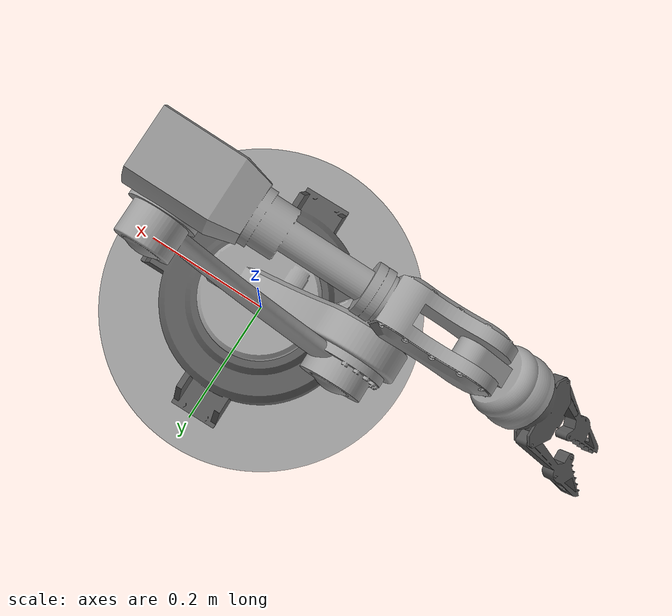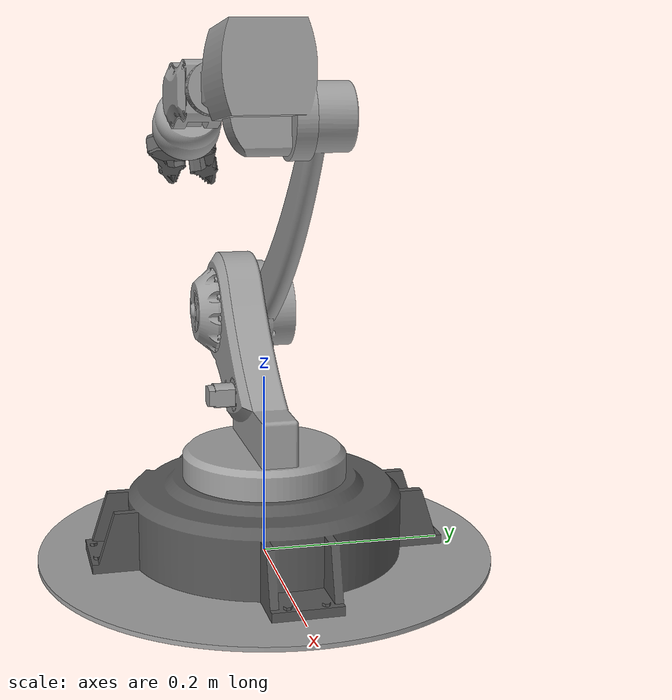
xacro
<?xml version="1.0" ?>
<robot name="industrial_manipulator" xmlns:xacro="http://www.ros.org/wiki/xacro">

<xacro:include filename="$(find industrial_manipulator_description)/urdf/materials.xacro" />
<xacro:include filename="$(find industrial_manipulator_description)/urdf/industrial_manipulator.trans" />
<xacro:include filename="$(find industrial_manipulator_description)/urdf/industrial_manipulator.gazebo" />
<link name="base_link">
  <inertial>
    <origin xyz="3.7056147840780973e-17 0.0 0.0025" rpy="0 0 0"/>
    <mass value="7.706719478337462"/>
    <inertia ixx="0.120434" iyy="0.120434" izz="0.240835" ixy="0.0" iyz="0.0" ixz="0.0"/>
  </inertial>
  <visual>
    <origin xyz="0 0 0" rpy="0 0 0"/>
    <geometry>
      <mesh filename="package://industrial_manipulator_description/meshes/base_link.stl" scale="0.001 0.001 0.001"/>
    </geometry>
    <material name="steel_satin"/>
  </visual>
  <collision>
    <origin xyz="0 0 0" rpy="0 0 0"/>
    <geometry>
      <mesh filename="package://industrial_manipulator_description/meshes/base_link.stl" scale="0.001 0.001 0.001"/>
    </geometry>
  </collision>
</link>

<link name="link_1_1">
  <inertial>
    <origin xyz="-0.059179768169652223 -0.004771022287952845 0.05995343825363532" rpy="0 0 0"/>
    <mass value="18.75876915858104"/>
    <inertia ixx="0.097802" iyy="0.193886" izz="0.132372" ixy="-0.006316" iyz="0.00549" ixz="0.07432"/>
  </inertial>
  <visual>
    <origin xyz="-0.0 0.0 -0.109" rpy="0 0 0"/>
    <geometry>
      <mesh filename="package://industrial_manipulator_description/meshes/link_1_1.stl" scale="0.001 0.001 0.001"/>
    </geometry>
    <material name="steel_satin"/>
  </visual>
  <collision>
    <origin xyz="-0.0 0.0 -0.109" rpy="0 0 0"/>
    <geometry>
      <mesh filename="package://industrial_manipulator_description/meshes/link_1_1.stl" scale="0.001 0.001 0.001"/>
    </geometry>
  </collision>
</link>

<link name="link_2_1">
  <inertial>
    <origin xyz="0.1046974308612598 0.037234352020241834 0.09187875343172738" rpy="0 0 0"/>
    <mass value="6.328393377937569"/>
    <inertia ixx="0.064903" iyy="0.135193" izz="0.072298" ixy="-0.000601" iyz="-0.000827" ixz="-0.064485"/>
  </inertial>
  <visual>
    <origin xyz="0.149985 0.002086 -0.244154" rpy="0 0 0"/>
    <geometry>
      <mesh filename="package://industrial_manipulator_description/meshes/link_2_1.stl" scale="0.001 0.001 0.001"/>
    </geometry>
    <material name="steel_satin"/>
  </visual>
  <collision>
    <origin xyz="0.149985 0.002086 -0.244154" rpy="0 0 0"/>
    <geometry>
      <mesh filename="package://industrial_manipulator_description/meshes/link_2_1.stl" scale="0.001 0.001 0.001"/>
    </geometry>
  </collision>
</link>

<link name="link_3_1">
  <inertial>
    <origin xyz="-0.04808155967490895 -0.027034211292782478 0.0338349060979814" rpy="0 0 0"/>
    <mass value="11.40386431538772"/>
    <inertia ixx="0.015254" iyy="0.067298" izz="0.064227" ixy="-0.001658" iyz="0.000841" ixz="-0.002875"/>
  </inertial>
  <visual>
    <origin xyz="-0.102049 -0.001419 -0.486983" rpy="0 0 0"/>
    <geometry>
      <mesh filename="package://industrial_manipulator_description/meshes/link_3_1.stl" scale="0.001 0.001 0.001"/>
    </geometry>
    <material name="steel_satin"/>
  </visual>
  <collision>
    <origin xyz="-0.102049 -0.001419 -0.486983" rpy="0 0 0"/>
    <geometry>
      <mesh filename="package://industrial_manipulator_description/meshes/link_3_1.stl" scale="0.001 0.001 0.001"/>
    </geometry>
  </collision>
</link>

<link name="link_5_1">
  <inertial>
    <origin xyz="-0.04946280137004627 -0.010713567038477822 -0.031774239275904725" rpy="0 0 0"/>
    <mass value="2.6723759798303592"/>
    <inertia ixx="0.002212" iyy="0.002818" izz="0.002553" ixy="-3.1e-05" iyz="-2e-05" ixz="-0.000373"/>
  </inertial>
  <visual>
    <origin xyz="0.261449 0.021102 -0.489485" rpy="0 0 0"/>
    <geometry>
      <mesh filename="package://industrial_manipulator_description/meshes/link_5_1.stl" scale="0.001 0.001 0.001"/>
    </geometry>
    <material name="steel_satin"/>
  </visual>
  <collision>
    <origin xyz="0.261449 0.021102 -0.489485" rpy="0 0 0"/>
    <geometry>
      <mesh filename="package://industrial_manipulator_description/meshes/link_5_1.stl" scale="0.001 0.001 0.001"/>
    </geometry>
  </collision>
</link>

<link name="link_4_1">
  <inertial>
    <origin xyz="-0.0866191608498616 -0.0016609138359282502 -0.010174002326179987" rpy="0 0 0"/>
    <mass value="3.7369903850273785"/>
    <inertia ixx="0.003214" iyy="0.008956" izz="0.009398" ixy="-8.5e-05" iyz="-7e-06" ixz="-0.000737"/>
  </inertial>
  <visual>
    <origin xyz="0.127246 0.029772 -0.505309" rpy="0 0 0"/>
    <geometry>
      <mesh filename="package://industrial_manipulator_description/meshes/link_4_1.stl" scale="0.001 0.001 0.001"/>
    </geometry>
    <material name="steel_satin"/>
  </visual>
  <collision>
    <origin xyz="0.127246 0.029772 -0.505309" rpy="0 0 0"/>
    <geometry>
      <mesh filename="package://industrial_manipulator_description/meshes/link_4_1.stl" scale="0.001 0.001 0.001"/>
    </geometry>
  </collision>
</link>

<link name="finger_2_1">
  <inertial>
    <origin xyz="-0.032983919736223055 0.0008662017129529706 -0.03696176910752497" rpy="0 0 0"/>
    <mass value="0.24416324011848"/>
    <inertia ixx="8.1e-05" iyy="0.000216" izz="0.000164" ixy="1.8e-05" iyz="1.1e-05" ixz="-9.2e-05"/>
  </inertial>
  <visual>
    <origin xyz="0.376301 -0.007397 -0.432696" rpy="0 0 0"/>
    <geometry>
      <mesh filename="package://industrial_manipulator_description/meshes/finger_2_1.stl" scale="0.001 0.001 0.001"/>
    </geometry>
    <material name="paint_metallic_black"/>
  </visual>
  <collision>
    <origin xyz="0.376301 -0.007397 -0.432696" rpy="0 0 0"/>
    <geometry>
      <mesh filename="package://industrial_manipulator_description/meshes/finger_2_1.stl" scale="0.001 0.001 0.001"/>
    </geometry>
  </collision>
</link>

<link name="finger_1_1">
  <inertial>
    <origin xyz="-0.02814114511406679 0.023861962912167335 -0.03310758677914366" rpy="0 0 0"/>
    <mass value="0.24416324019014932"/>
    <inertia ixx="9.9e-05" iyy="0.000186" izz="0.000176" ixy="6.3e-05" iyz="3.8e-05" ixz="-7.6e-05"/>
  </inertial>
  <visual>
    <origin xyz="0.373894 0.074172 -0.431181" rpy="0 0 0"/>
    <geometry>
      <mesh filename="package://industrial_manipulator_description/meshes/finger_1_1.stl" scale="0.001 0.001 0.001"/>
    </geometry>
    <material name="paint_metallic_black"/>
  </visual>
  <collision>
    <origin xyz="0.373894 0.074172 -0.431181" rpy="0 0 0"/>
    <geometry>
      <mesh filename="package://industrial_manipulator_description/meshes/finger_1_1.stl" scale="0.001 0.001 0.001"/>
    </geometry>
  </collision>
</link>

<link name="link_6_1">
  <inertial>
    <origin xyz="-0.005333322866314938 -9.372049889264794e-05 -0.0034244188895766747" rpy="0 0 0"/>
    <mass value="0.6001743214822736"/>
    <inertia ixx="0.000311" iyy="0.000253" izz="0.000305" ixy="2e-06" iyz="-1e-06" ixz="7e-06"/>
  </inertial>
  <visual>
    <origin xyz="0.348821 0.032639 -0.433369" rpy="0 0 0"/>
    <geometry>
      <mesh filename="package://industrial_manipulator_description/meshes/link_6_1.stl" scale="0.001 0.001 0.001"/>
    </geometry>
    <material name="paint_metallic_black"/>
  </visual>
  <collision>
    <origin xyz="0.348821 0.032639 -0.433369" rpy="0 0 0"/>
    <geometry>
      <mesh filename="package://industrial_manipulator_description/meshes/link_6_1.stl" scale="0.001 0.001 0.001"/>
    </geometry>
  </collision>
</link>

<link name="robot_base_1">
  <inertial>
    <origin xyz="0.0014197141044319395 0.001447931728787637 0.0387094571887376" rpy="0 0 0"/>
    <mass value="45.31428377967881"/>
    <inertia ixx="0.286423" iyy="0.286673" izz="0.523195" ixy="0.006278" iyz="-0.000329" ixz="-0.000294"/>
  </inertial>
  <visual>
    <origin xyz="-0.0 -0.0 -0.005" rpy="0 0 0"/>
    <geometry>
      <mesh filename="package://industrial_manipulator_description/meshes/robot_base_1.stl" scale="0.001 0.001 0.001"/>
    </geometry>
    <material name="paint_metallic_black"/>
  </visual>
  <collision>
    <origin xyz="-0.0 -0.0 -0.005" rpy="0 0 0"/>
    <geometry>
      <mesh filename="package://industrial_manipulator_description/meshes/robot_base_1.stl" scale="0.001 0.001 0.001"/>
    </geometry>
  </collision>
</link>

<joint name="twist_1" type="continuous">
  <origin xyz="0.0 -0.0 0.104" rpy="0 0 0"/>
  <parent link="robot_base_1"/>
  <child link="link_1_1"/>
  <axis xyz="0.0 -0.0 1.0"/>
</joint>

<joint name="rev_1" type="continuous">
  <origin xyz="-0.149985 -0.002086 0.135154" rpy="0 0 0"/>
  <parent link="link_1_1"/>
  <child link="link_2_1"/>
  <axis xyz="-0.013907 0.999903 -0.0"/>
</joint>

<joint name="rev_2" type="continuous">
  <origin xyz="0.252034 0.003505 0.242829" rpy="0 0 0"/>
  <parent link="link_2_1"/>
  <child link="link_3_1"/>
  <axis xyz="0.013907 -0.999903 0.0"/>
</joint>

<joint name="rev_3" type="continuous">
  <origin xyz="-0.134203 0.00867 -0.015824" rpy="0 0 0"/>
  <parent link="link_4_1"/>
  <child link="link_5_1"/>
  <axis xyz="-0.013084 0.99989 -0.007"/>
</joint>

<joint name="twist_2" type="continuous">
  <origin xyz="-0.229295 -0.031191 0.018326" rpy="0 0 0"/>
  <parent link="link_3_1"/>
  <child link="link_4_1"/>
  <axis xyz="-0.993075 -0.013812 -0.116669"/>
</joint>

<joint name="finger_rev_1" type="continuous">
  <origin xyz="-0.02748 0.040036 -0.000673" rpy="0 0 0"/>
  <parent link="link_6_1"/>
  <child link="finger_2_1"/>
  <axis xyz="0.539644 0.031546 -0.841302"/>
</joint>

<joint name="finger_rev_2" type="continuous">
  <origin xyz="-0.025073 -0.041533 -0.002188" rpy="0 0 0"/>
  <parent link="link_6_1"/>
  <child link="finger_1_1"/>
  <axis xyz="0.539644 0.031546 -0.841302"/>
</joint>

<joint name="twist_3" type="continuous">
  <origin xyz="-0.087372 -0.011537 -0.056116" rpy="0 0 0"/>
  <parent link="link_5_1"/>
  <child link="link_6_1"/>
  <axis xyz="-0.841377 -0.014792 -0.540247"/>
</joint>

<joint name="Rigid35" type="fixed">
  <origin xyz="0.0 0.0 0.005" rpy="0 0 0"/>
  <parent link="base_link"/>
  <child link="robot_base_1"/>
</joint>

</robot>

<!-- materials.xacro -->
<robot name="industrial_manipulator" xmlns:xacro="http://www.ros.org/wiki/xacro" >

<material name="silver_default">
  <color rgba="0.700 0.700 0.700 1.000"/>
</material>
<material name="paint_metallic_black">
  <color rgba="0.34901960784313724 0.34901960784313724 0.34901960784313724 1.0"/>
</material>
<material name="steel_satin">
  <color rgba="0.6274509803921569 0.6274509803921569 0.6274509803921569 1.0"/>
</material>

</robot>

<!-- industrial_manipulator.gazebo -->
<robot name="industrial_manipulator" xmlns:xacro="http://www.ros.org/wiki/xacro" >

<xacro:property name="body_color" value="Gazebo/Silver" />

<gazebo>
  <plugin name="control" filename="libgazebo_ros_control.so"/>
</gazebo>
<gazebo reference="base_link">
  <material>${body_color}</material>
  <mu1>0.2</mu1>
  <mu2>0.2</mu2>
  <selfCollide>true</selfCollide>
  <gravity>true</gravity>
</gazebo>

<gazebo reference="link_1_1">
  <material>${body_color}</material>
  <mu1>0.2</mu1>
  <mu2>0.2</mu2>
  <selfCollide>true</selfCollide>
</gazebo>

<gazebo reference="link_2_1">
  <material>${body_color}</material>
  <mu1>0.2</mu1>
  <mu2>0.2</mu2>
  <selfCollide>true</selfCollide>
</gazebo>

<gazebo reference="link_3_1">
  <material>${body_color}</material>
  <mu1>0.2</mu1>
  <mu2>0.2</mu2>
  <selfCollide>true</selfCollide>
</gazebo>

<gazebo reference="link_5_1">
  <material>${body_color}</material>
  <mu1>0.2</mu1>
  <mu2>0.2</mu2>
  <selfCollide>true</selfCollide>
</gazebo>

<gazebo reference="link_4_1">
  <material>${body_color}</material>
  <mu1>0.2</mu1>
  <mu2>0.2</mu2>
  <selfCollide>true</selfCollide>
</gazebo>

<gazebo reference="finger_2_1">
  <material>${body_color}</material>
  <mu1>0.2</mu1>
  <mu2>0.2</mu2>
  <selfCollide>true</selfCollide>
</gazebo>

<gazebo reference="finger_1_1">
  <material>${body_color}</material>
  <mu1>0.2</mu1>
  <mu2>0.2</mu2>
  <selfCollide>true</selfCollide>
</gazebo>

<gazebo reference="link_6_1">
  <material>${body_color}</material>
  <mu1>0.2</mu1>
  <mu2>0.2</mu2>
  <selfCollide>true</selfCollide>
</gazebo>

<gazebo reference="robot_base_1">
  <material>${body_color}</material>
  <mu1>0.2</mu1>
  <mu2>0.2</mu2>
  <selfCollide>true</selfCollide>
</gazebo>

</robot>
